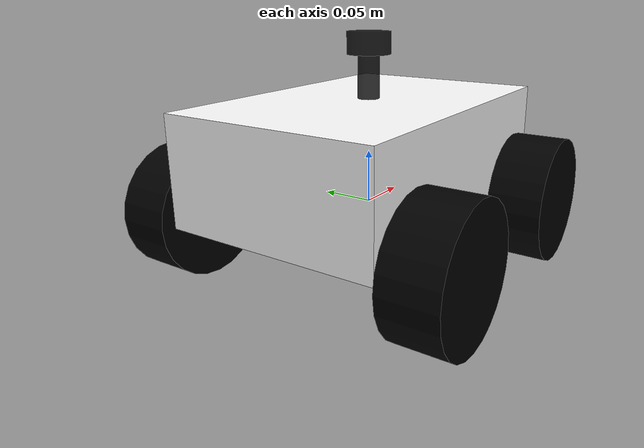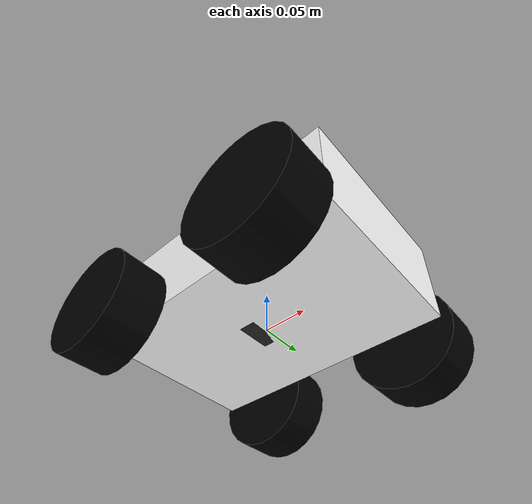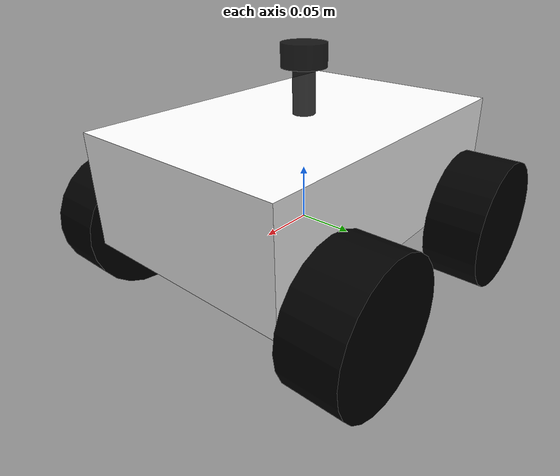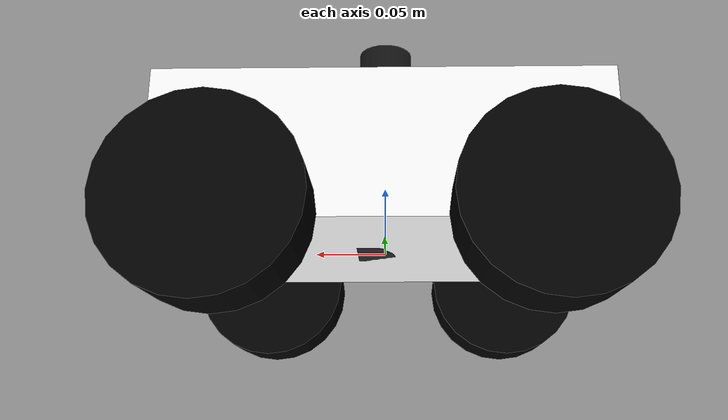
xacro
<?xml version="1.0"?>

<robot name="robot" xmlns:xacro="http://www.ros.org/wiki/xacro">

    <xacro:arg name="publish_odom" default="true"/>
    <xacro:property name="length_wheel" value="0.05" />
    <xacro:property name="radius_wheel" value="0.06" />
    <xacro:property name="PI" value="3.1415926"/>
    <xacro:macro name="default_inertial" params="mass">
        <inertial>
            <mass value="${mass}" />
            <inertia ixx="0.01" ixy="0.0" ixz="0.0"
                    iyy="0.01" iyz="0.0" izz="0.01" />
        </inertial>
    </xacro:macro>

    <link name="base_link">
        <visual>
            <geometry>
                <box size="0.2 .3 .1"/>
            </geometry>
            <origin rpy="0 0 ${PI/2}" xyz="0 0 0.05"/>
            <material name="white">
                <color rgba="1 1 1 1"/>
            </material>
        </visual>
        <collision>
            <geometry>
                <box size="0.2 .3 0.1"/>
            </geometry>
            <origin rpy="0 0 ${PI/2}" xyz="0 0 0.05"/>
        </collision>
        <xacro:default_inertial mass="8.2"/>
    </link>

    <link name="wheel_1">
        <visual>
            <geometry>
                <cylinder length="${length_wheel}" radius="${radius_wheel}"/>
            </geometry>
            <origin rpy="0 0 0" xyz="0 0 0"/>
            <material name="black">
                <color rgba="0 0 0 1"/>
            </material>
        </visual>
        <collision>
            <geometry>
                <cylinder length="${length_wheel}" radius="${radius_wheel}"/>
            </geometry>
        </collision>
        <mu1>0.5</mu1>
        <mu2>0.5</mu2>
        <xacro:default_inertial mass="0.5"/>
    </link>

    <link name="wheel_2">
        <visual>
            <geometry>
                <cylinder length="${length_wheel}" radius="${radius_wheel}"/>
            </geometry>
            <origin rpy="0 0 0" xyz="0 0 0"/>
            <material name="black"/>
        </visual>
        <collision>
            <geometry>
                <cylinder length="${length_wheel}" radius="${radius_wheel}"/>
            </geometry>
        </collision>
        <mu1>0.5</mu1>
        <mu2>0.5</mu2>
        <xacro:default_inertial mass="0.5"/>
    </link>

    <link name="wheel_3">
        <visual>
            <geometry>
                <cylinder length="${length_wheel}" radius="${radius_wheel}"/>
            </geometry>
            <origin rpy="0 0 0" xyz="0 0 0"/>
            <material name="black"/>
        </visual>
        <collision>
            <geometry>
                <cylinder length="${length_wheel}" radius="${radius_wheel}"/>
            </geometry>
        </collision>
        <mu1>0.5</mu1>
        <mu2>0.5</mu2>
        <xacro:default_inertial mass="0.5"/>
    </link>

    <link name="wheel_4">
        <visual>
            <geometry>
                <cylinder length="${length_wheel}" radius="${radius_wheel}"/>
            </geometry>
            <origin rpy="0 0 0" xyz="0 0 0" />
            <material name="black"/>
        </visual>
        <collision>
            <geometry>
                <cylinder length="${length_wheel}" radius="${radius_wheel}"/>
            </geometry>
        </collision>
        <mu1>0.5</mu1>
        <mu2>0.5</mu2>
        <xacro:default_inertial mass="0.5"/>
    </link>

    <joint name="base_to_wheel1" type="continuous">
        <parent link="base_link"/>
        <child link="wheel_1"/>
        <origin rpy="${-PI/2} 0 0" xyz="0.1 0.13 0"/>
        <axis xyz="0 0 1" />
        <dynamics damping="0.2" friction="0.1"/>
    </joint>

    <joint name="base_to_wheel2" type="continuous">
        <axis xyz="0 0 1" />
        <anchor xyz="0 0 0" />
        <limit effort="100" velocity="100" />
        <parent link="base_link"/>
        <child link="wheel_2"/>
        <origin rpy="${-PI/2} 0 0" xyz="-0.1 0.13 0"/>
        <dynamics damping="0.2" friction="0.1"/>
    </joint>

    <joint name="base_to_wheel3" type="continuous">
        <parent link="base_link"/>
        <axis xyz="0 0 1" />
        <child link="wheel_3"/>
        <origin rpy="${-PI/2} 0 0" xyz="0.1 -0.13 0"/>
        <dynamics damping="0.2" friction="0.1"/>
    </joint>

    <joint name="base_to_wheel4" type="continuous">
        <parent link="base_link"/>
        <axis xyz="0 0 1" />
        <child link="wheel_4"/>
        <origin rpy="${-PI/2} 0 0" xyz="-0.1 -0.13 0"/>
        <dynamics damping="0.2" friction="0.1"/>
    </joint>

    <!-- 控制器插件 -->
    <gazebo>
        <plugin name="mecanum_controller" filename="libgazebo_ros_planar_move.so">
            <ros>
                <remapping>cmd_vel:=cmd_vel</remapping>
                <remapping>odom:=odom</remapping>
            </ros>

            <update_rate>100</update_rate>
            <publish_rate>100</publish_rate>

            <publish_odom>$(arg publish_odom)</publish_odom>
            <publish_odom_tf>$(arg publish_odom)</publish_odom_tf>
            <odometry_frame>odom</odometry_frame>
            <robot_base_frame>base_link</robot_base_frame>

            <leftFrontJoint>base_to_wheel1</leftFrontJoint>
            <rightFrontJoint>base_to_wheel3</rightFrontJoint>
            <leftRearJoint>base_to_wheel2</leftRearJoint>
            <rightRearJoint>base_to_wheel4</rightRearJoint>
            <wheelSeparation>0.26</wheelSeparation>
            <wheelDiameter>0.12</wheelDiameter>
        </plugin>
    </gazebo>

    <!-- IMU joint -->
        <link name="imu_link">
            <visual>
                <origin xyz="0 0 00" rpy="0 0 0" />
                <geometry>
                    <box size="0.04 0.04 0.04" />
                </geometry>
                <material name="black">
                    <color rgba="0 0 0 0.8" />
                </material>
            </visual>
            <collision>
                <origin xyz="0 0 00" rpy="0 0 0" />
                <geometry>
                    <box size="0.04 0.04 0.04" />
                </geometry>
                <material name="black">
                    <color rgba="0 0 0 0.8" />
                </material>
            </collision>
        </link>

        <joint name="imu_joint" type="fixed">
            <parent link="base_link" />
            <child link="imu_link" />
            <origin xyz="0.0 0 0.02" />
        </joint>

        <sensor name="imu_sensor" type="imu">
            <always_on>1</always_on>
            <update_rate>1</update_rate>
            <visualize>true</visualize>
            <topic>imu</topic>
        </sensor>

    <!-- imu插件 -->
        <gazebo reference="imu_link">
            <sensor name="imu_sensor" type="imu">
                <plugin name="imu_plugin" filename="libgazebo_ros_imu_sensor.so">
                    <ros>
                        <namespace>/</namespace>
                        <remapping>~/out:=imu</remapping>
                    </ros>
                    <initial_orientation_as_reference>false</initial_orientation_as_reference>
                </plugin>
                <update_rate>100</update_rate>
                <always_on>true</always_on>
                <visualize>true</visualize>
                <imu>
                    <angular_velocity>
                        <x>
                            <noise type="gaussian">
                                <mean>0.0</mean>
                                <stddev>1e-4</stddev>
                                <bias_mean>0.0</bias_mean>
                                <bias_stddev>1e-6</bias_stddev>
                            </noise>
                        </x>
                        <y>
                            <noise type="gaussian">
                                <mean>0.0</mean>
                                <stddev>1e-4</stddev>
                                <bias_mean>0.0</bias_mean>
                                <bias_stddev>1e-6</bias_stddev>
                            </noise>
                        </y>
                        <z>
                            <noise type="gaussian">
                                <mean>0.0</mean>
                                <stddev>1e-4</stddev>
                                <bias_mean>0.0</bias_mean>
                                <bias_stddev>1e-6</bias_stddev>
                            </noise>
                        </z>
                    </angular_velocity>
                    <linear_acceleration>
                        <x>
                            <noise type="gaussian">
                                <mean>0.0</mean>
                                <stddev>5e-3</stddev>
                                <bias_mean>0.0</bias_mean>
                                <bias_stddev>1e-5</bias_stddev>
                            </noise>
                        </x>
                        <y>
                            <noise type="gaussian">
                                <mean>0.0</mean>
                                <stddev>5e-3</stddev>
                                <bias_mean>0.0</bias_mean>
                                <bias_stddev>1e-5</bias_stddev>
                            </noise>
                        </y>
                        <z>
                            <noise type="gaussian">
                                <mean>0.0</mean>
                                <stddev>5e-3</stddev>
                                <bias_mean>0.0</bias_mean>
                                <bias_stddev>1e-5</bias_stddev>
                            </noise>
                        </z>
                    </linear_acceleration>
                </imu>
            </sensor>
        </gazebo>

    <!-- gazebo插件设置相关 -->

    <gazebo reference="base_link">
        <material>Gazebo/Blue</material>
    </gazebo>

    <gazebo reference="wheel_1">
        <material>Gazebo/Black</material>
        <mu1>0.05</mu1>
        <mu2>0.05</mu2>
        <kp>1000000.0</kp>
        <kd>10.0</kd>
        <minDepth>0.001</minDepth>
        <maxVel>0.1</maxVel>
    </gazebo>

    <gazebo reference="wheel_2">
        <material>Gazebo/Black</material>
        <mu1>0.05</mu1>
        <mu2>0.05</mu2>
        <kp>1000000.0</kp>
        <kd>10.0</kd>
        <minDepth>0.001</minDepth>
        <maxVel>0.1</maxVel>
    </gazebo>

    <gazebo reference="wheel_3">
        <material>Gazebo/Black</material>
        <mu1>0.05</mu1>
        <mu2>0.05</mu2>
        <kp>1000000.0</kp>
        <kd>10.0</kd>
        <minDepth>0.001</minDepth>
        <maxVel>0.1</maxVel>
    </gazebo>

    <gazebo reference="wheel_4">
        <material>Gazebo/Black</material>
        <mu1>0.05</mu1>
        <mu2>0.05</mu2>
        <kp>1000000.0</kp>
        <kd>10.0</kd>
        <minDepth>0.001</minDepth>
        <maxVel>0.1</maxVel>
    </gazebo>

        <link name="laser_cylinder_link">
            <visual>
                <origin xyz="0 0 0" rpy="0 0 0" />
                <geometry>
                    <cylinder length="0.08" radius="0.01" />
                </geometry>
                <material name="black">
                    <color rgba="0.0 0.0 0.0 0.8" />
                </material>
            </visual>
            <collision>
                <origin xyz="0 0 0" rpy="0 0 0" />
                <geometry>
                    <cylinder length="0.10" radius="0.01" />
                </geometry>
                <material name="black">
                    <color rgba="0.0 0.0 0.0 0.8" />
                </material>
            </collision>
            <geometry>
                <box size="0.0 0.0 0.8"/>
            </geometry>
        </link>

        <joint name="laser_cylinder_joint" type="fixed">
            <parent link="base_link" />
            <child link="laser_cylinder_link" />
            <origin xyz="0 0 0.10" />
        </joint>

        <link name="lidar_link">
            <visual>
                <origin xyz="0 0 0" rpy="0 0 0" />
                <geometry>
                    <cylinder length="0.02" radius="0.02" />
                </geometry>
                <material name="black">
                    <color rgba="0.0 0.0 0.0 0.8" />
                </material>
            </visual>
            <collision>
                <origin xyz="0 0 0" rpy="0 0 0" />
                <geometry>
                    <cylinder length="0.02" radius="0.02" />
                </geometry>
                <material name="black">
                    <color rgba="0.0 0.0 0.0 0.8" />
                </material>
            </collision>
            <geometry>
                <box size="0.03 0.02 0.02"/>
            </geometry>
        </link>

        <joint name="laser_joint" type="fixed">
            <parent link="laser_cylinder_link" />
            <child link="lidar_link" />
            <origin xyz="0 0 0.05" />
        </joint>

        <gazebo reference="laser_cylinder_link">
            <material>Gazebo/Black</material>
        </gazebo>
        <gazebo reference="lidar_link">
            <material>Gazebo/Black</material>

        </gazebo>
    <!-- lidar插件 -->
        <gazebo reference="lidar_link">
            <sensor name="laser_sensor" type="ray">
                <plugin name="laserscan" filename="libgazebo_ros_ray_sensor.so">
                    <ros>
                        <namespace>/</namespace>
                        <remapping>~/out:=pointclouds</remapping>
                    </ros>
                    <output_type>sensor_msgs/PointCloud2</output_type>
                </plugin>
                <always_on>true</always_on>
                <visualize>false</visualize>
                <update_rate>8</update_rate>
                <pose>0 0 0 0 0 0</pose>
                <ray>
                    <!-- 设置扫描范围 -->
                    <scan>
                        <horizontal>
                            <samples>640</samples>
                            <resolution>1.000000</resolution>
                            <min_angle>0.000000</min_angle>
                            <max_angle>6.280000</max_angle>
                        </horizontal>
                        <vertical>
                            <samples>16</samples>
                            <resolution>1</resolution>
                            <min_angle>-0.261799</min_angle>
                            <max_angle>0.261799</max_angle>
                        </vertical>
                    </scan>
                    <!-- 设置扫描距离 -->
                    <range>
                        <min>0.120000</min>
                        <max>100.0</max>
                        <resolution>0.015000</resolution>
                    </range>
                    <!-- 设置噪声 -->
                    <noise>
                        <type>gaussian</type>
                        <mean>0.0</mean>
                        <stddev>0.01</stddev>
                    </noise>
                </ray>
            </sensor>
        </gazebo>

</robot>
